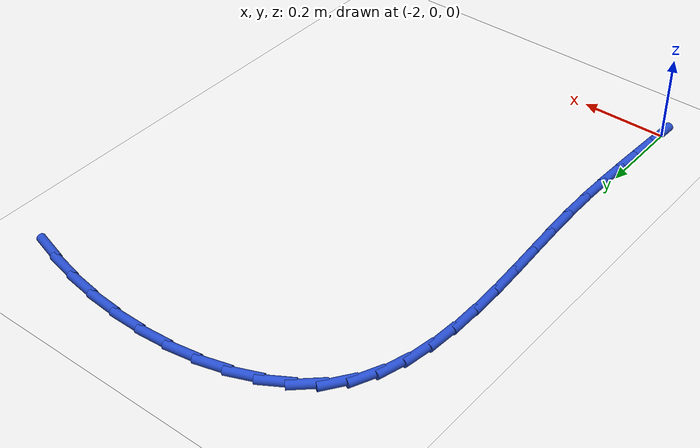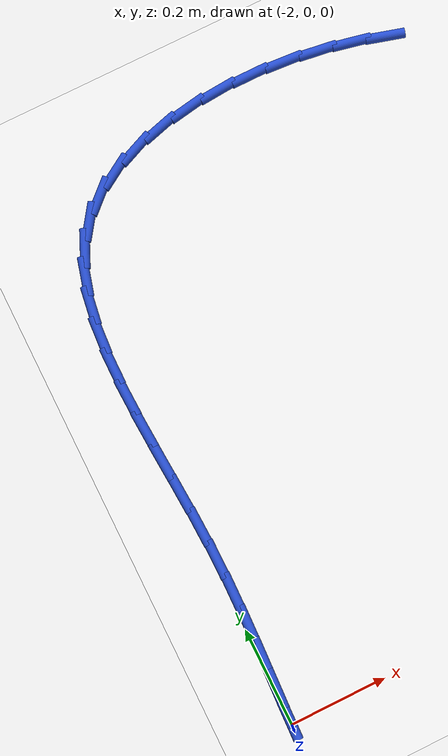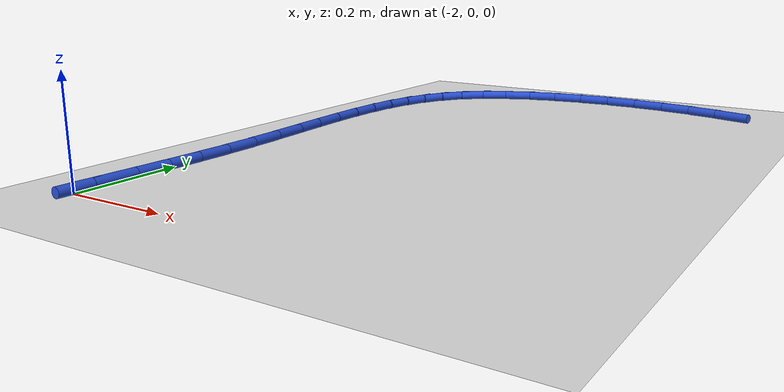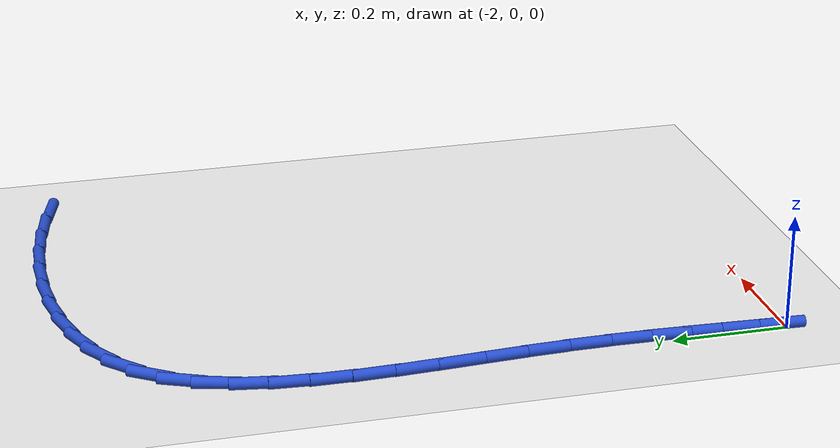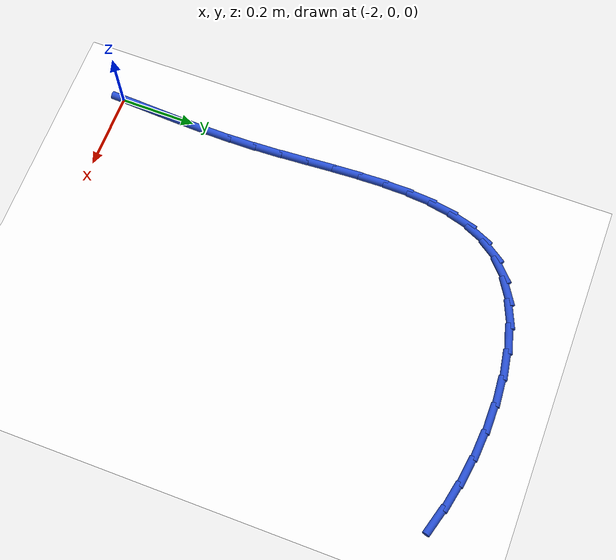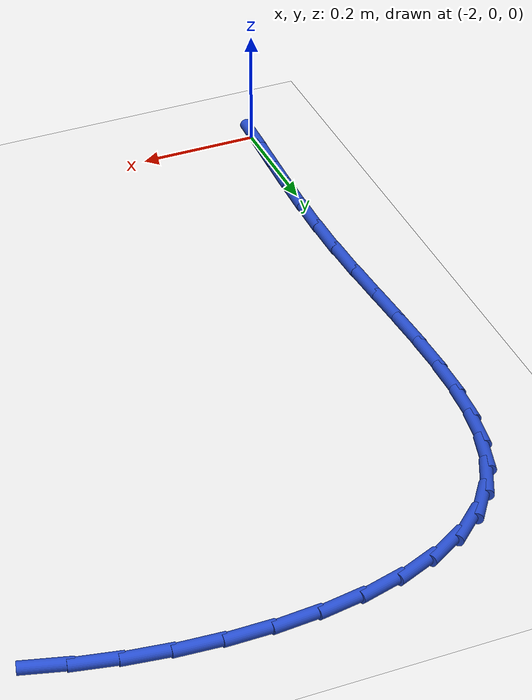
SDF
<sdf version="1.6">
 <world name="default">
  <model name="ground_plane">
   <static>1</static>
   <link name="link">
    <collision name="collision">
     <geometry><plane><normal>0 0 1</normal><size>100 100</size></plane></geometry>
     <surface><friction><ode><mu>100</mu><mu2>50</mu2></ode></friction></surface>
    </collision>
    <visual name="visual">
     <cast_shadows>0</cast_shadows>
     <geometry><plane><normal>0 0 1</normal><size>100 100</size></plane></geometry>
     <material>
      <script><uri>file://media/materials/scripts/gazebo.material</uri><name>Gazebo/WhiteGlow</name></script>
     </material>
    </visual>
   </link>
  </model>
  <model name="line">
   <link name="link_28">
    <pose>-1.2307368185456071 1.1299669453528556 0.01 0 1.57 -0.2734816975135395</pose>
    <collision name="collision">
     <geometry><cylinder><radius>0.01</radius><length>0.08</length></cylinder></geometry>
    </collision>
    <visual name="visual">
     <material>
      <script><name>Gazebo/Blue</name><uri>file://media/materials/scripts/gazebo.material</uri></script>
     </material>
     <geometry><cylinder><radius>0.01</radius><length>0.08</length></cylinder></geometry>
    </visual>
   </link>
   <link name="link_29">
    <pose>-1.2961664837801967 1.1483206302214184 0.01 0 1.57 -0.20333864171646956</pose>
    <collision name="collision">
     <geometry><cylinder><radius>0.01</radius><length>0.08</length></cylinder></geometry>
    </collision>
    <visual name="visual">
     <material>
      <script><name>Gazebo/Blue</name><uri>file://media/materials/scripts/gazebo.material</uri></script>
     </material>
     <geometry><cylinder><radius>0.01</radius><length>0.08</length></cylinder></geometry>
    </visual>
   </link>
   <link name="link_30">
    <pose>-1.3650524881780723 1.1625241137765154 0.01 0 1.57 -0.1356962785854262</pose>
    <collision name="collision">
     <geometry><cylinder><radius>0.01</radius><length>0.08</length></cylinder></geometry>
    </collision>
    <visual name="visual">
     <material>
      <script><name>Gazebo/Blue</name><uri>file://media/materials/scripts/gazebo.material</uri></script>
     </material>
     <geometry><cylinder><radius>0.01</radius><length>0.08</length></cylinder></geometry>
    </visual>
   </link>
   <link name="link_31">
    <pose>-1.4361872021435274 1.1722365160893222 0.01 0 1.57 -0.06797426085618846</pose>
    <collision name="collision">
     <geometry><cylinder><radius>0.01</radius><length>0.08</length></cylinder></geometry>
    </collision>
    <visual name="visual">
     <material>
      <script><name>Gazebo/Blue</name><uri>file://media/materials/scripts/gazebo.material</uri></script>
     </material>
     <geometry><cylinder><radius>0.01</radius><length>0.08</length></cylinder></geometry>
    </visual>
   </link>
   <link name="link_32">
    <pose>-1.5082189205768723 1.177140373994266 0.01 0 1.57 0.0031036352453096367</pose>
    <collision name="collision">
     <geometry><cylinder><radius>0.01</radius><length>0.08</length></cylinder></geometry>
    </collision>
    <visual name="visual">
     <material>
      <script><name>Gazebo/Blue</name><uri>file://media/materials/scripts/gazebo.material</uri></script>
     </material>
     <geometry><cylinder><radius>0.01</radius><length>0.08</length></cylinder></geometry>
    </visual>
   </link>
   <link name="link_33">
    <pose>-1.5797959383784164 1.1769182243257732 0.01 0 1.57 0.08102575307446964</pose>
    <collision name="collision">
     <geometry><cylinder><radius>0.01</radius><length>0.08</length></cylinder></geometry>
    </collision>
    <visual name="visual">
     <material>
      <script><name>Gazebo/Blue</name><uri>file://media/materials/scripts/gazebo.material</uri></script>
     </material>
     <geometry><cylinder><radius>0.01</radius><length>0.08</length></cylinder></geometry>
    </visual>
   </link>
   <link name="link_34">
    <pose>-1.6495665504484704 1.1712526039182725 0.01 0 1.57 0.16988427139355958</pose>
    <collision name="collision">
     <geometry><cylinder><radius>0.01</radius><length>0.08</length></cylinder></geometry>
    </collision>
    <visual name="visual">
     <material>
      <script><name>Gazebo/Blue</name><uri>file://media/materials/scripts/gazebo.material</uri></script>
     </material>
     <geometry><cylinder><radius>0.01</radius><length>0.08</length></cylinder></geometry>
    </visual>
   </link>
   <link name="link_35">
    <pose>-1.7161790516873447 1.1598260496061903 0.01 0 1.57 0.2747429167929246</pose>
    <collision name="collision">
     <geometry><cylinder><radius>0.01</radius><length>0.08</length></cylinder></geometry>
    </collision>
    <visual name="visual">
     <material>
      <script><name>Gazebo/Blue</name><uri>file://media/materials/scripts/gazebo.material</uri></script>
     </material>
     <geometry><cylinder><radius>0.01</radius><length>0.08</length></cylinder></geometry>
    </visual>
   </link>
   <link name="link_36">
    <pose>-1.778281736995348 1.1423210982239538 0.01 0 1.57 0.40184529766536686</pose>
    <collision name="collision">
     <geometry><cylinder><radius>0.01</radius><length>0.08</length></cylinder></geometry>
    </collision>
    <visual name="visual">
     <material>
      <script><name>Gazebo/Blue</name><uri>file://media/materials/scripts/gazebo.material</uri></script>
     </material>
     <geometry><cylinder><radius>0.01</radius><length>0.08</length></cylinder></geometry>
    </visual>
   </link>
   <link name="link_37">
    <pose>-1.8345229012727915 1.1184202866059905 0.01 0 1.57 0.5581837404538618</pose>
    <collision name="collision">
     <geometry><cylinder><radius>0.01</radius><length>0.08</length></cylinder></geometry>
    </collision>
    <visual name="visual">
     <material>
      <script><name>Gazebo/Blue</name><uri>file://media/materials/scripts/gazebo.material</uri></script>
     </material>
     <geometry><cylinder><radius>0.01</radius><length>0.08</length></cylinder></geometry>
    </visual>
   </link>
   <link name="link_38">
    <pose>-1.8835508394199847 1.087806151586728 0.01 0 1.57 0.7492926083713456</pose>
    <collision name="collision">
     <geometry><cylinder><radius>0.01</radius><length>0.08</length></cylinder></geometry>
    </collision>
    <visual name="visual">
     <material>
      <script><name>Gazebo/Blue</name><uri>file://media/materials/scripts/gazebo.material</uri></script>
     </material>
     <geometry><cylinder><radius>0.01</radius><length>0.08</length></cylinder></geometry>
    </visual>
   </link>
   <link name="link_39">
    <pose>-1.9240161167983045 1.0501622746858374 0.01 0 1.57 0.9610867268522909</pose>
    <collision name="collision">
     <geometry><cylinder><radius>0.01</radius><length>0.08</length></cylinder></geometry>
    </collision>
    <visual name="visual">
     <material>
      <script><name>Gazebo/Blue</name><uri>file://media/materials/scripts/gazebo.material</uri></script>
     </material>
     <geometry><cylinder><radius>0.01</radius><length>0.08</length></cylinder></geometry>
    </visual>
   </link>
   <link name="link_40">
    <pose>-1.9552290296261057 1.0054757929876383 0.01 0 1.57 1.149846317449919</pose>
    <collision name="collision">
     <geometry><cylinder><radius>0.01</radius><length>0.08</length></cylinder></geometry>
    </collision>
    <visual name="visual">
     <material>
      <script><name>Gazebo/Blue</name><uri>file://media/materials/scripts/gazebo.material</uri></script>
     </material>
     <geometry><cylinder><radius>0.01</radius><length>0.08</length></cylinder></geometry>
    </visual>
   </link>
   <link name="link_41">
    <pose>-1.9780709108964203 0.9544567094999982 0.01 0 1.57 1.3018792698571748</pose>
    <collision name="collision">
     <geometry><cylinder><radius>0.01</radius><length>0.08</length></cylinder></geometry>
    </collision>
    <visual name="visual">
     <material>
      <script><name>Gazebo/Blue</name><uri>file://media/materials/scripts/gazebo.material</uri></script>
     </material>
     <geometry><cylinder><radius>0.01</radius><length>0.08</length></cylinder></geometry>
    </visual>
   </link>
   <link name="link_42">
    <pose>-1.9936519222325106 0.8979203159304432 0.01 0 1.57 1.4180032914158245</pose>
    <collision name="collision">
     <geometry><cylinder><radius>0.01</radius><length>0.08</length></cylinder></geometry>
    </collision>
    <visual name="visual">
     <material>
      <script><name>Gazebo/Blue</name><uri>file://media/materials/scripts/gazebo.material</uri></script>
     </material>
     <geometry><cylinder><radius>0.01</radius><length>0.08</length></cylinder></geometry>
    </visual>
   </link>
   <link name="link_43">
    <pose>-2.003082225257638 0.8366819039865016 0.01 0 1.57 1.5034931882959726</pose>
    <collision name="collision">
     <geometry><cylinder><radius>0.01</radius><length>0.08</length></cylinder></geometry>
    </collision>
    <visual name="visual">
     <material>
      <script><name>Gazebo/Blue</name><uri>file://media/materials/scripts/gazebo.material</uri></script>
     </material>
     <geometry><cylinder><radius>0.01</radius><length>0.08</length></cylinder></geometry>
    </visual>
   </link>
   <link name="link_44">
    <pose>-2.007471981595063 0.7715567653756992 0.01 0 1.57 1.5640604410845087</pose>
    <collision name="collision">
     <geometry><cylinder><radius>0.01</radius><length>0.08</length></cylinder></geometry>
    </collision>
    <visual name="visual">
     <material>
      <script><name>Gazebo/Blue</name><uri>file://media/materials/scripts/gazebo.material</uri></script>
     </material>
     <geometry><cylinder><radius>0.01</radius><length>0.08</length></cylinder></geometry>
    </visual>
   </link>
   <link name="link_45">
    <pose>-2.0079313528680474 0.7033601918055642 0.01 0 1.57 -1.5372991218536654</pose>
    <collision name="collision">
     <geometry><cylinder><radius>0.01</radius><length>0.08</length></cylinder></geometry>
    </collision>
    <visual name="visual">
     <material>
      <script><name>Gazebo/Blue</name><uri>file://media/materials/scripts/gazebo.material</uri></script>
     </material>
     <geometry><cylinder><radius>0.01</radius><length>0.08</length></cylinder></geometry>
    </visual>
   </link>
   <link name="link_46">
    <pose>-2.005570500699853 0.6329074749836232 0.01 0 1.57 -1.5142325537601162</pose>
    <collision name="collision">
     <geometry><cylinder><radius>0.01</radius><length>0.08</length></cylinder></geometry>
    </collision>
    <visual name="visual">
     <material>
      <script><name>Gazebo/Blue</name><uri>file://media/materials/scripts/gazebo.material</uri></script>
     </material>
     <geometry><cylinder><radius>0.01</radius><length>0.08</length></cylinder></geometry>
    </visual>
   </link>
   <link name="link_47">
    <pose>-2.0014995867137397 0.5610139066174035 0.01 0 1.57 -1.5064771391262948</pose>
    <collision name="collision">
     <geometry><cylinder><radius>0.01</radius><length>0.08</length></cylinder></geometry>
    </collision>
    <visual name="visual">
     <material>
      <script><name>Gazebo/Blue</name><uri>file://media/materials/scripts/gazebo.material</uri></script>
     </material>
     <geometry><cylinder><radius>0.01</radius><length>0.08</length></cylinder></geometry>
    </visual>
   </link>
   <link name="link_48">
    <pose>-1.9968287725329712 0.4884947784144322 0.01 0 1.57 -1.5133373513362045</pose>
    <collision name="collision">
     <geometry><cylinder><radius>0.01</radius><length>0.08</length></cylinder></geometry>
    </collision>
    <visual name="visual">
     <material>
      <script><name>Gazebo/Blue</name><uri>file://media/materials/scripts/gazebo.material</uri></script>
     </material>
     <geometry><cylinder><radius>0.01</radius><length>0.08</length></cylinder></geometry>
    </visual>
   </link>
   <link name="link_49">
    <pose>-1.992668219780807 0.41616538208223625 0.01 0 1.57 -1.535124898087766</pose>
    <collision name="collision">
     <geometry><cylinder><radius>0.01</radius><length>0.08</length></cylinder></geometry>
    </collision>
    <visual name="visual">
     <material>
      <script><name>Gazebo/Blue</name><uri>file://media/materials/scripts/gazebo.material</uri></script>
     </material>
     <geometry><cylinder><radius>0.01</radius><length>0.08</length></cylinder></geometry>
    </visual>
   </link>
   <link name="link_50">
    <pose>-1.9901227961889123 0.34483816165970416 0.01 0 1.57 -1.565407225242018</pose>
    <collision name="collision">
     <geometry><cylinder><radius>0.01</radius><length>0.08</length></cylinder></geometry>
    </collision>
    <visual name="visual">
     <material>
      <script><name>Gazebo/Blue</name><uri>file://media/materials/scripts/gazebo.material</uri></script>
     </material>
     <geometry><cylinder><radius>0.01</radius><length>0.08</length></cylinder></geometry>
    </visual>
   </link>
   <link name="link_51">
    <pose>-1.9897465854248375 0.27502928566187296 0.01 0 1.57 1.551442001165869</pose>
    <collision name="collision">
     <geometry><cylinder><radius>0.01</radius><length>0.08</length></cylinder></geometry>
    </collision>
    <visual name="visual">
     <material>
      <script><name>Gazebo/Blue</name><uri>file://media/materials/scripts/gazebo.material</uri></script>
     </material>
     <geometry><cylinder><radius>0.01</radius><length>0.08</length></cylinder></geometry>
    </visual>
   </link>
   <link name="link_52">
    <pose>-1.9910691440121584 0.20670381312901812 0.01 0 1.57 1.5343716156770084</pose>
    <collision name="collision">
     <geometry><cylinder><radius>0.01</radius><length>0.08</length></cylinder></geometry>
    </collision>
    <visual name="visual">
     <material>
      <script><name>Gazebo/Blue</name><uri>file://media/materials/scripts/gazebo.material</uri></script>
     </material>
     <geometry><cylinder><radius>0.01</radius><length>0.08</length></cylinder></geometry>
    </visual>
   </link>
   <link name="link_53">
    <pose>-1.9935083860982328 0.1397667488884237 0.01 0 1.57 1.525524503276148</pose>
    <collision name="collision">
     <geometry><cylinder><radius>0.01</radius><length>0.08</length></cylinder></geometry>
    </collision>
    <visual name="visual">
     <material>
      <script><name>Gazebo/Blue</name><uri>file://media/materials/scripts/gazebo.material</uri></script>
     </material>
     <geometry><cylinder><radius>0.01</radius><length>0.08</length></cylinder></geometry>
    </visual>
   </link>
   <link name="link_54">
    <pose>-1.9964822258304142 0.0741230977673734 0.01 0 1.57 1.5254191504349157</pose>
    <collision name="collision">
     <geometry><cylinder><radius>0.01</radius><length>0.08</length></cylinder></geometry>
    </collision>
    <visual name="visual">
     <material>
      <script><name>Gazebo/Blue</name><uri>file://media/materials/scripts/gazebo.material</uri></script>
     </material>
     <geometry><cylinder><radius>0.01</radius><length>0.08</length></cylinder></geometry>
    </visual>
   </link>
   <link name="link_55">
    <pose>-1.9994085773560601 0.009677864593151005 0.01 0 1.57 1.5345521517265435</pose>
    <collision name="collision">
     <geometry><cylinder><radius>0.01</radius><length>0.08</length></cylinder></geometry>
    </collision>
    <visual name="visual">
     <material>
      <script><name>Gazebo/Blue</name><uri>file://media/materials/scripts/gazebo.material</uri></script>
     </material>
     <geometry><cylinder><radius>0.01</radius><length>0.08</length></cylinder></geometry>
    </visual>
   </link>
  </model>
 </world>
</sdf>
